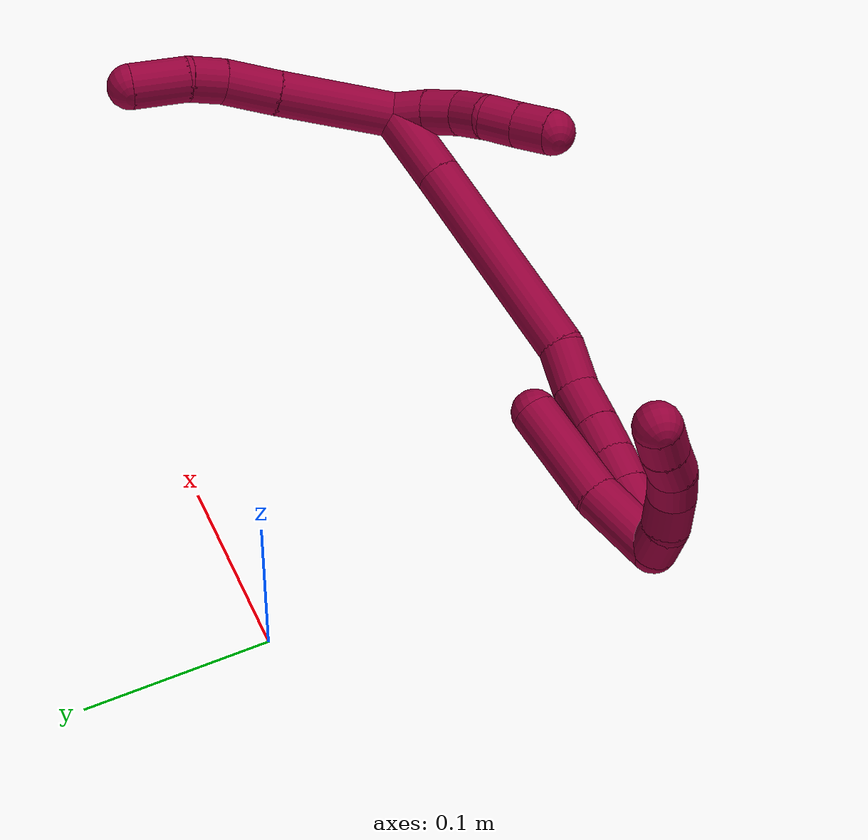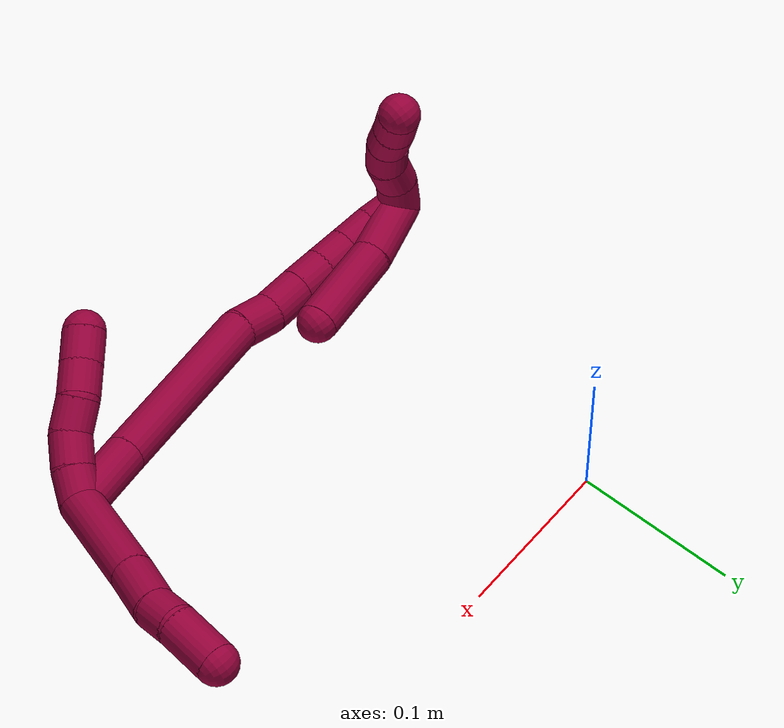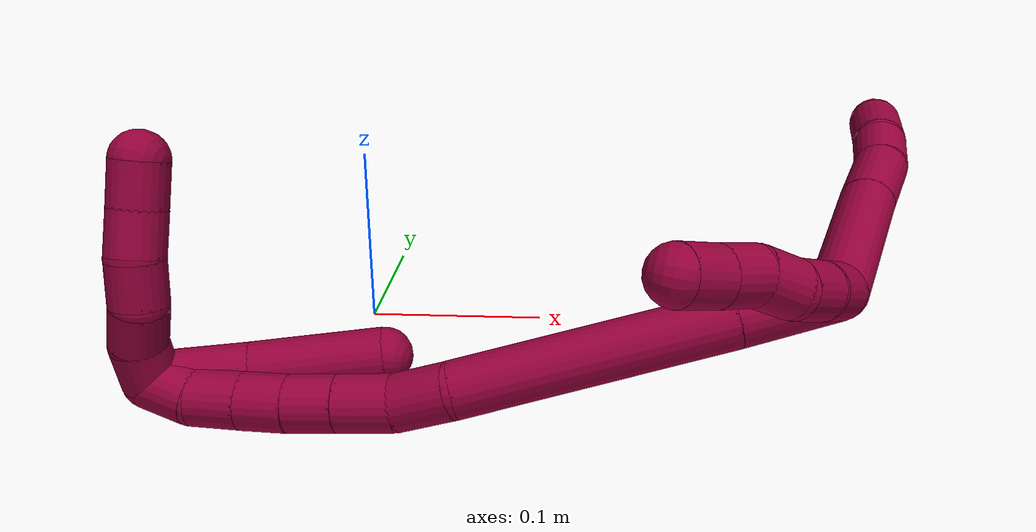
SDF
<sdf version="1.7">
 <world name="default">
  <model name="8">
   <static>0</static>
   <link name="8">
    <collision name="collision-cylinder-e_1_2_8">
     <pose>0.01946 0.02711 0.004685 -1.39967 0.615641 -0.523125</pose>
     <geometry><cylinder><radius>0.0125</radius><length>0.067397</length></cylinder></geometry>
     <surface>
      <friction><ode><mu>1.16</mu><mu2>1.16</mu2><slip1>0</slip1><slip2>0</slip2></ode></friction>
      <contact><ode><kp>1e+06</kp><kd>1</kd><max_vel>0</max_vel><min_depth>0.001</min_depth></ode></contact>
     </surface>
    </collision>
    <visual name="visual-cylinder-e_1_2_8">
     <pose>0.01946 0.02711 0.004685 -1.39967 0.615641 -0.523125</pose>
     <geometry><cylinder><radius>0.0125</radius><length>0.067397</length></cylinder></geometry>
     <material><ambient>0.584314 0 0.227451 1</ambient></material>
    </visual>
    <collision name="collision-cylinder-e_2_8_9">
     <pose>0.04763 0.066555 0.011991 -1.36142 0.604382 -0.494578</pose>
     <geometry><cylinder><radius>0.0125</radius><length>0.030652</length></cylinder></geometry>
     <surface>
      <friction><ode><mu>1.16</mu><mu2>1.16</mu2><slip1>0</slip1><slip2>0</slip2></ode></friction>
      <contact><ode><kp>1e+06</kp><kd>1</kd><max_vel>0</max_vel><min_depth>0.001</min_depth></ode></contact>
     </surface>
    </collision>
    <visual name="visual-cylinder-e_2_8_9">
     <pose>0.04763 0.066555 0.011991 -1.36142 0.604382 -0.494578</pose>
     <geometry><cylinder><radius>0.0125</radius><length>0.030652</length></cylinder></geometry>
     <material><ambient>0.584314 0 0.227451 1</ambient></material>
    </visual>
    <collision name="collision-cylinder-e_3_9_10">
     <pose>0.062149 0.087068 0.014012 -1.64414 0.61649 -0.660217</pose>
     <geometry><cylinder><radius>0.0125</radius><length>0.020099</length></cylinder></geometry>
     <surface>
      <friction><ode><mu>1.16</mu><mu2>1.16</mu2><slip1>0</slip1><slip2>0</slip2></ode></friction>
      <contact><ode><kp>1e+06</kp><kd>1</kd><max_vel>0</max_vel><min_depth>0.001</min_depth></ode></contact>
     </surface>
    </collision>
    <visual name="visual-cylinder-e_3_9_10">
     <pose>0.062149 0.087068 0.014012 -1.64414 0.61649 -0.660217</pose>
     <geometry><cylinder><radius>0.0125</radius><length>0.020099</length></cylinder></geometry>
     <material><ambient>0.584314 0 0.227451 1</ambient></material>
    </visual>
    <collision name="collision-cylinder-e_4_10_6">
     <pose>0.080146 0.10547 0.012651 -1.64499 0.871337 -0.929508</pose>
     <geometry><cylinder><radius>0.0125</radius><length>0.031852</length></cylinder></geometry>
     <surface>
      <friction><ode><mu>1.16</mu><mu2>1.16</mu2><slip1>0</slip1><slip2>0</slip2></ode></friction>
      <contact><ode><kp>1e+06</kp><kd>1</kd><max_vel>0</max_vel><min_depth>0.001</min_depth></ode></contact>
     </surface>
    </collision>
    <visual name="visual-cylinder-e_4_10_6">
     <pose>0.080146 0.10547 0.012651 -1.64499 0.871337 -0.929508</pose>
     <geometry><cylinder><radius>0.0125</radius><length>0.031852</length></cylinder></geometry>
     <material><ambient>0.584314 0 0.227451 1</ambient></material>
    </visual>
    <collision name="collision-cylinder-e_1_2_11">
     <pose>-0.008572 -0.002818 -0.004311 2.56269 -1.02976 -2.17254</pose>
     <geometry><cylinder><radius>0.0125</radius><length>0.02</length></cylinder></geometry>
     <surface>
      <friction><ode><mu>1.16</mu><mu2>1.16</mu2><slip1>0</slip1><slip2>0</slip2></ode></friction>
      <contact><ode><kp>1e+06</kp><kd>1</kd><max_vel>0</max_vel><min_depth>0.001</min_depth></ode></contact>
     </surface>
    </collision>
    <visual name="visual-cylinder-e_1_2_11">
     <pose>-0.008572 -0.002818 -0.004311 2.56269 -1.02976 -2.17254</pose>
     <geometry><cylinder><radius>0.0125</radius><length>0.02</length></cylinder></geometry>
     <material><ambient>0.584314 0 0.227451 1</ambient></material>
    </visual>
    <collision name="collision-cylinder-e_2_11_12">
     <pose>-0.024941 -0.008308 -0.014284 2.70063 -0.89423 -2.26712</pose>
     <geometry><cylinder><radius>0.0125</radius><length>0.02</length></cylinder></geometry>
     <surface>
      <friction><ode><mu>1.16</mu><mu2>1.16</mu2><slip1>0</slip1><slip2>0</slip2></ode></friction>
      <contact><ode><kp>1e+06</kp><kd>1</kd><max_vel>0</max_vel><min_depth>0.001</min_depth></ode></contact>
     </surface>
    </collision>
    <visual name="visual-cylinder-e_2_11_12">
     <pose>-0.024941 -0.008308 -0.014284 2.70063 -0.89423 -2.26712</pose>
     <geometry><cylinder><radius>0.0125</radius><length>0.02</length></cylinder></geometry>
     <material><ambient>0.584314 0 0.227451 1</ambient></material>
    </visual>
    <collision name="collision-cylinder-e_3_12_13">
     <pose>-0.039145 -0.011293 -0.027618 3.10081 -0.695392 -3.02916</pose>
     <geometry><cylinder><radius>0.0125</radius><length>0.02</length></cylinder></geometry>
     <surface>
      <friction><ode><mu>1.16</mu><mu2>1.16</mu2><slip1>0</slip1><slip2>0</slip2></ode></friction>
      <contact><ode><kp>1e+06</kp><kd>1</kd><max_vel>0</max_vel><min_depth>0.001</min_depth></ode></contact>
     </surface>
    </collision>
    <visual name="visual-cylinder-e_3_12_13">
     <pose>-0.039145 -0.011293 -0.027618 3.10081 -0.695392 -3.02916</pose>
     <geometry><cylinder><radius>0.0125</radius><length>0.02</length></cylinder></geometry>
     <material><ambient>0.584314 0 0.227451 1</ambient></material>
    </visual>
    <collision name="collision-cylinder-e_4_13_14">
     <pose>-0.052048 -0.01486 -0.042161 2.69938 -0.707042 -2.04739</pose>
     <geometry><cylinder><radius>0.0125</radius><length>0.02</length></cylinder></geometry>
     <surface>
      <friction><ode><mu>1.16</mu><mu2>1.16</mu2><slip1>0</slip1><slip2>0</slip2></ode></friction>
      <contact><ode><kp>1e+06</kp><kd>1</kd><max_vel>0</max_vel><min_depth>0.001</min_depth></ode></contact>
     </surface>
    </collision>
    <visual name="visual-cylinder-e_4_13_14">
     <pose>-0.052048 -0.01486 -0.042161 2.69938 -0.707042 -2.04739</pose>
     <geometry><cylinder><radius>0.0125</radius><length>0.02</length></cylinder></geometry>
     <material><ambient>0.584314 0 0.227451 1</ambient></material>
    </visual>
    <collision name="collision-cylinder-e_5_14_5">
     <pose>-0.065209 -0.020984 -0.055913 2.74626 -0.729545 -2.17551</pose>
     <geometry><cylinder><radius>0.0125</radius><length>0.02</length></cylinder></geometry>
     <surface>
      <friction><ode><mu>1.16</mu><mu2>1.16</mu2><slip1>0</slip1><slip2>0</slip2></ode></friction>
      <contact><ode><kp>1e+06</kp><kd>1</kd><max_vel>0</max_vel><min_depth>0.001</min_depth></ode></contact>
     </surface>
    </collision>
    <visual name="visual-cylinder-e_5_14_5">
     <pose>-0.065209 -0.020984 -0.055913 2.74626 -0.729545 -2.17551</pose>
     <geometry><cylinder><radius>0.0125</radius><length>0.02</length></cylinder></geometry>
     <material><ambient>0.584314 0 0.227451 1</ambient></material>
    </visual>
    <collision name="collision-cylinder-e_1_2_15">
     <pose>-0.001854 -0.010603 -0.01968 2.64739 -0.082765 -0.325386</pose>
     <geometry><cylinder><radius>0.0125</radius><length>0.044862</length></cylinder></geometry>
     <surface>
      <friction><ode><mu>1.16</mu><mu2>1.16</mu2><slip1>0</slip1><slip2>0</slip2></ode></friction>
      <contact><ode><kp>1e+06</kp><kd>1</kd><max_vel>0</max_vel><min_depth>0.001</min_depth></ode></contact>
     </surface>
    </collision>
    <visual name="visual-cylinder-e_1_2_15">
     <pose>-0.001854 -0.010603 -0.01968 2.64739 -0.082765 -0.325386</pose>
     <geometry><cylinder><radius>0.0125</radius><length>0.044862</length></cylinder></geometry>
     <material><ambient>0.584314 0 0.227451 1</ambient></material>
    </visual>
    <collision name="collision-cylinder-e_2_15_16">
     <pose>-0.008433 -0.048589 -0.092966 2.66934 -0.078326 -0.32286</pose>
     <geometry><cylinder><radius>0.0125</radius><length>0.120762</length></cylinder></geometry>
     <surface>
      <friction><ode><mu>1.16</mu><mu2>1.16</mu2><slip1>0</slip1><slip2>0</slip2></ode></friction>
      <contact><ode><kp>1e+06</kp><kd>1</kd><max_vel>0</max_vel><min_depth>0.001</min_depth></ode></contact>
     </surface>
    </collision>
    <visual name="visual-cylinder-e_2_15_16">
     <pose>-0.008433 -0.048589 -0.092966 2.66934 -0.078326 -0.32286</pose>
     <geometry><cylinder><radius>0.0125</radius><length>0.120762</length></cylinder></geometry>
     <material><ambient>0.584314 0 0.227451 1</ambient></material>
    </visual>
    <collision name="collision-cylinder-e_3_16_17">
     <pose>-0.010852 -0.080784 -0.158076 2.7453 0.182876 0.856802</pose>
     <geometry><cylinder><radius>0.0125</radius><length>0.025361</length></cylinder></geometry>
     <surface>
      <friction><ode><mu>1.16</mu><mu2>1.16</mu2><slip1>0</slip1><slip2>0</slip2></ode></friction>
      <contact><ode><kp>1e+06</kp><kd>1</kd><max_vel>0</max_vel><min_depth>0.001</min_depth></ode></contact>
     </surface>
    </collision>
    <visual name="visual-cylinder-e_3_16_17">
     <pose>-0.010852 -0.080784 -0.158076 2.7453 0.182876 0.856802</pose>
     <geometry><cylinder><radius>0.0125</radius><length>0.025361</length></cylinder></geometry>
     <material><ambient>0.584314 0 0.227451 1</ambient></material>
    </visual>
    <collision name="collision-cylinder-e_4_17_18">
     <pose>-0.008897 -0.088366 -0.181579 2.91487 -0.028502 -0.249071</pose>
     <geometry><cylinder><radius>0.0125</radius><length>0.02464</length></cylinder></geometry>
     <surface>
      <friction><ode><mu>1.16</mu><mu2>1.16</mu2><slip1>0</slip1><slip2>0</slip2></ode></friction>
      <contact><ode><kp>1e+06</kp><kd>1</kd><max_vel>0</max_vel><min_depth>0.001</min_depth></ode></contact>
     </surface>
    </collision>
    <visual name="visual-cylinder-e_4_17_18">
     <pose>-0.008897 -0.088366 -0.181579 2.91487 -0.028502 -0.249071</pose>
     <geometry><cylinder><radius>0.0125</radius><length>0.02464</length></cylinder></geometry>
     <material><ambient>0.584314 0 0.227451 1</ambient></material>
    </visual>
    <collision name="collision-cylinder-e_5_18_19">
     <pose>-0.009323 -0.093435 -0.20388 2.9218 -0.007116 -0.064473</pose>
     <geometry><cylinder><radius>0.0125</radius><length>0.021113</length></cylinder></geometry>
     <surface>
      <friction><ode><mu>1.16</mu><mu2>1.16</mu2><slip1>0</slip1><slip2>0</slip2></ode></friction>
      <contact><ode><kp>1e+06</kp><kd>1</kd><max_vel>0</max_vel><min_depth>0.001</min_depth></ode></contact>
     </surface>
    </collision>
    <visual name="visual-cylinder-e_5_18_19">
     <pose>-0.009323 -0.093435 -0.20388 2.9218 -0.007116 -0.064473</pose>
     <geometry><cylinder><radius>0.0125</radius><length>0.021113</length></cylinder></geometry>
     <material><ambient>0.584314 0 0.227451 1</ambient></material>
    </visual>
    <collision name="collision-cylinder-e_6_19_20">
     <pose>-0.009535 -0.09734 -0.22423 2.98333 -0.013457 -0.1693</pose>
     <geometry><cylinder><radius>0.0125</radius><length>0.020351</length></cylinder></geometry>
     <surface>
      <friction><ode><mu>1.16</mu><mu2>1.16</mu2><slip1>0</slip1><slip2>0</slip2></ode></friction>
      <contact><ode><kp>1e+06</kp><kd>1</kd><max_vel>0</max_vel><min_depth>0.001</min_depth></ode></contact>
     </surface>
    </collision>
    <visual name="visual-cylinder-e_6_19_20">
     <pose>-0.009535 -0.09734 -0.22423 2.98333 -0.013457 -0.1693</pose>
     <geometry><cylinder><radius>0.0125</radius><length>0.020351</length></cylinder></geometry>
     <material><ambient>0.584314 0 0.227451 1</ambient></material>
    </visual>
    <collision name="collision-cylinder-e_7_20_21">
     <pose>-0.009908 -0.100479 -0.244982 2.99916 -0.021819 -0.303528</pose>
     <geometry><cylinder><radius>0.0125</radius><length>0.021635</length></cylinder></geometry>
     <surface>
      <friction><ode><mu>1.16</mu><mu2>1.16</mu2><slip1>0</slip1><slip2>0</slip2></ode></friction>
      <contact><ode><kp>1e+06</kp><kd>1</kd><max_vel>0</max_vel><min_depth>0.001</min_depth></ode></contact>
     </surface>
    </collision>
    <visual name="visual-cylinder-e_7_20_21">
     <pose>-0.009908 -0.100479 -0.244982 2.99916 -0.021819 -0.303528</pose>
     <geometry><cylinder><radius>0.0125</radius><length>0.021635</length></cylinder></geometry>
     <material><ambient>0.584314 0 0.227451 1</ambient></material>
    </visual>
    <collision name="collision-cylinder-e_8_21_1">
     <pose>-0.010034 -0.100572 -0.266228 -3.00562 0.010374 -0.152069</pose>
     <geometry><cylinder><radius>0.0125</radius><length>0.021277</length></cylinder></geometry>
     <surface>
      <friction><ode><mu>1.16</mu><mu2>1.16</mu2><slip1>0</slip1><slip2>0</slip2></ode></friction>
      <contact><ode><kp>1e+06</kp><kd>1</kd><max_vel>0</max_vel><min_depth>0.001</min_depth></ode></contact>
     </surface>
    </collision>
    <visual name="visual-cylinder-e_8_21_1">
     <pose>-0.010034 -0.100572 -0.266228 -3.00562 0.010374 -0.152069</pose>
     <geometry><cylinder><radius>0.0125</radius><length>0.021277</length></cylinder></geometry>
     <material><ambient>0.584314 0 0.227451 1</ambient></material>
    </visual>
    <collision name="collision-cylinder-e_1_1_22">
     <pose>-0.003873 -0.091992 -0.258255 -0.368021 0.296003 -0.055482</pose>
     <geometry><cylinder><radius>0.0125</radius><length>0.041486</length></cylinder></geometry>
     <surface>
      <friction><ode><mu>1.16</mu><mu2>1.16</mu2><slip1>0</slip1><slip2>0</slip2></ode></friction>
      <contact><ode><kp>1e+06</kp><kd>1</kd><max_vel>0</max_vel><min_depth>0.001</min_depth></ode></contact>
     </surface>
    </collision>
    <visual name="visual-cylinder-e_1_1_22">
     <pose>-0.003873 -0.091992 -0.258255 -0.368021 0.296003 -0.055482</pose>
     <geometry><cylinder><radius>0.0125</radius><length>0.041486</length></cylinder></geometry>
     <material><ambient>0.584314 0 0.227451 1</ambient></material>
    </visual>
    <collision name="collision-cylinder-e_2_22_4">
     <pose>0.00622 -0.074928 -0.212519 -0.349616 0.138595 -0.024515</pose>
     <geometry><cylinder><radius>0.0125</radius><length>0.058514</length></cylinder></geometry>
     <surface>
      <friction><ode><mu>1.16</mu><mu2>1.16</mu2><slip1>0</slip1><slip2>0</slip2></ode></friction>
      <contact><ode><kp>1e+06</kp><kd>1</kd><max_vel>0</max_vel><min_depth>0.001</min_depth></ode></contact>
     </surface>
    </collision>
    <visual name="visual-cylinder-e_2_22_4">
     <pose>0.00622 -0.074928 -0.212519 -0.349616 0.138595 -0.024515</pose>
     <geometry><cylinder><radius>0.0125</radius><length>0.058514</length></cylinder></geometry>
     <material><ambient>0.584314 0 0.227451 1</ambient></material>
    </visual>
    <collision name="collision-cylinder-e_1_1_23">
     <pose>-0.017291 -0.09256 -0.278367 -1.80963 -0.828277 1.0201</pose>
     <geometry><cylinder><radius>0.0125</radius><length>0.02</length></cylinder></geometry>
     <surface>
      <friction><ode><mu>1.16</mu><mu2>1.16</mu2><slip1>0</slip1><slip2>0</slip2></ode></friction>
      <contact><ode><kp>1e+06</kp><kd>1</kd><max_vel>0</max_vel><min_depth>0.001</min_depth></ode></contact>
     </surface>
    </collision>
    <visual name="visual-cylinder-e_1_1_23">
     <pose>-0.017291 -0.09256 -0.278367 -1.80963 -0.828277 1.0201</pose>
     <geometry><cylinder><radius>0.0125</radius><length>0.02</length></cylinder></geometry>
     <material><ambient>0.584314 0 0.227451 1</ambient></material>
    </visual>
    <collision name="collision-cylinder-e_2_23_24">
     <pose>-0.031533 -0.078862 -0.27858 -1.37864 -0.757927 0.634254</pose>
     <geometry><cylinder><radius>0.0125</radius><length>0.02</length></cylinder></geometry>
     <surface>
      <friction><ode><mu>1.16</mu><mu2>1.16</mu2><slip1>0</slip1><slip2>0</slip2></ode></friction>
      <contact><ode><kp>1e+06</kp><kd>1</kd><max_vel>0</max_vel><min_depth>0.001</min_depth></ode></contact>
     </surface>
    </collision>
    <visual name="visual-cylinder-e_2_23_24">
     <pose>-0.031533 -0.078862 -0.27858 -1.37864 -0.757927 0.634254</pose>
     <geometry><cylinder><radius>0.0125</radius><length>0.02</length></cylinder></geometry>
     <material><ambient>0.584314 0 0.227451 1</ambient></material>
    </visual>
    <collision name="collision-cylinder-e_3_24_25">
     <pose>-0.04358 -0.063245 -0.278287 -1.69904 -0.543717 0.613986</pose>
     <geometry><cylinder><radius>0.0125</radius><length>0.02</length></cylinder></geometry>
     <surface>
      <friction><ode><mu>1.16</mu><mu2>1.16</mu2><slip1>0</slip1><slip2>0</slip2></ode></friction>
      <contact><ode><kp>1e+06</kp><kd>1</kd><max_vel>0</max_vel><min_depth>0.001</min_depth></ode></contact>
     </surface>
    </collision>
    <visual name="visual-cylinder-e_3_24_25">
     <pose>-0.04358 -0.063245 -0.278287 -1.69904 -0.543717 0.613986</pose>
     <geometry><cylinder><radius>0.0125</radius><length>0.02</length></cylinder></geometry>
     <material><ambient>0.584314 0 0.227451 1</ambient></material>
    </visual>
    <collision name="collision-cylinder-e_4_25_26">
     <pose>-0.051818 -0.045301 -0.280469 -1.68532 -0.311486 0.348647</pose>
     <geometry><cylinder><radius>0.0125</radius><length>0.02</length></cylinder></geometry>
     <surface>
      <friction><ode><mu>1.16</mu><mu2>1.16</mu2><slip1>0</slip1><slip2>0</slip2></ode></friction>
      <contact><ode><kp>1e+06</kp><kd>1</kd><max_vel>0</max_vel><min_depth>0.001</min_depth></ode></contact>
     </surface>
    </collision>
    <visual name="visual-cylinder-e_4_25_26">
     <pose>-0.051818 -0.045301 -0.280469 -1.68532 -0.311486 0.348647</pose>
     <geometry><cylinder><radius>0.0125</radius><length>0.02</length></cylinder></geometry>
     <material><ambient>0.584314 0 0.227451 1</ambient></material>
    </visual>
    <collision name="collision-cylinder-e_5_26_3">
     <pose>-0.058475 -0.026551 -0.282409 -1.66217 -0.36739 0.401694</pose>
     <geometry><cylinder><radius>0.0125</radius><length>0.02</length></cylinder></geometry>
     <surface>
      <friction><ode><mu>1.16</mu><mu2>1.16</mu2><slip1>0</slip1><slip2>0</slip2></ode></friction>
      <contact><ode><kp>1e+06</kp><kd>1</kd><max_vel>0</max_vel><min_depth>0.001</min_depth></ode></contact>
     </surface>
    </collision>
    <visual name="visual-cylinder-e_5_26_3">
     <pose>-0.058475 -0.026551 -0.282409 -1.66217 -0.36739 0.401694</pose>
     <geometry><cylinder><radius>0.0125</radius><length>0.02</length></cylinder></geometry>
     <material><ambient>0.584314 0 0.227451 1</ambient></material>
    </visual>
    <collision name="collision-sphere-3">
     <pose>-0.062067 -0.017257 -0.28326 0 -0 0</pose>
     <geometry><sphere><radius>0.0125</radius></sphere></geometry>
     <surface>
      <friction><ode><mu>1.16</mu><mu2>1.16</mu2><slip1>0</slip1><slip2>0</slip2></ode></friction>
      <contact><ode><kp>1e+06</kp><kd>1</kd><max_vel>0</max_vel><min_depth>0.001</min_depth></ode></contact>
     </surface>
    </collision>
    <visual name="visual-sphere-3">
     <pose>-0.062067 -0.017257 -0.28326 0 -0 0</pose>
     <geometry><sphere><radius>0.0125</radius></sphere></geometry>
     <material><ambient>0.584314 0 0.227451 1</ambient></material>
    </visual>
    <collision name="collision-sphere-26">
     <pose>-0.054883 -0.035845 -0.281557 0 -0 0</pose>
     <geometry><sphere><radius>0.0125</radius></sphere></geometry>
     <surface>
      <friction><ode><mu>1.16</mu><mu2>1.16</mu2><slip1>0</slip1><slip2>0</slip2></ode></friction>
      <contact><ode><kp>1e+06</kp><kd>1</kd><max_vel>0</max_vel><min_depth>0.001</min_depth></ode></contact>
     </surface>
    </collision>
    <visual name="visual-sphere-26">
     <pose>-0.054883 -0.035845 -0.281557 0 -0 0</pose>
     <geometry><sphere><radius>0.0125</radius></sphere></geometry>
     <material><ambient>0.584314 0 0.227451 1</ambient></material>
    </visual>
    <collision name="collision-sphere-25">
     <pose>-0.048754 -0.054758 -0.279382 0 -0 0</pose>
     <geometry><sphere><radius>0.0125</radius></sphere></geometry>
     <surface>
      <friction><ode><mu>1.16</mu><mu2>1.16</mu2><slip1>0</slip1><slip2>0</slip2></ode></friction>
      <contact><ode><kp>1e+06</kp><kd>1</kd><max_vel>0</max_vel><min_depth>0.001</min_depth></ode></contact>
     </surface>
    </collision>
    <visual name="visual-sphere-25">
     <pose>-0.048754 -0.054758 -0.279382 0 -0 0</pose>
     <geometry><sphere><radius>0.0125</radius></sphere></geometry>
     <material><ambient>0.584314 0 0.227451 1</ambient></material>
    </visual>
    <collision name="collision-sphere-24">
     <pose>-0.038407 -0.071733 -0.277193 0 -0 0</pose>
     <geometry><sphere><radius>0.0125</radius></sphere></geometry>
     <surface>
      <friction><ode><mu>1.16</mu><mu2>1.16</mu2><slip1>0</slip1><slip2>0</slip2></ode></friction>
      <contact><ode><kp>1e+06</kp><kd>1</kd><max_vel>0</max_vel><min_depth>0.001</min_depth></ode></contact>
     </surface>
    </collision>
    <visual name="visual-sphere-24">
     <pose>-0.038407 -0.071733 -0.277193 0 -0 0</pose>
     <geometry><sphere><radius>0.0125</radius></sphere></geometry>
     <material><ambient>0.584314 0 0.227451 1</ambient></material>
    </visual>
    <collision name="collision-sphere-23">
     <pose>-0.024659 -0.085991 -0.279967 0 -0 0</pose>
     <geometry><sphere><radius>0.0125</radius></sphere></geometry>
     <surface>
      <friction><ode><mu>1.16</mu><mu2>1.16</mu2><slip1>0</slip1><slip2>0</slip2></ode></friction>
      <contact><ode><kp>1e+06</kp><kd>1</kd><max_vel>0</max_vel><min_depth>0.001</min_depth></ode></contact>
     </surface>
    </collision>
    <visual name="visual-sphere-23">
     <pose>-0.024659 -0.085991 -0.279967 0 -0 0</pose>
     <geometry><sphere><radius>0.0125</radius></sphere></geometry>
     <material><ambient>0.584314 0 0.227451 1</ambient></material>
    </visual>
    <collision name="collision-sphere-4">
     <pose>0.010262 -0.065003 -0.185296 0 -0 0</pose>
     <geometry><sphere><radius>0.0125</radius></sphere></geometry>
     <surface>
      <friction><ode><mu>1.16</mu><mu2>1.16</mu2><slip1>0</slip1><slip2>0</slip2></ode></friction>
      <contact><ode><kp>1e+06</kp><kd>1</kd><max_vel>0</max_vel><min_depth>0.001</min_depth></ode></contact>
     </surface>
    </collision>
    <visual name="visual-sphere-4">
     <pose>0.010262 -0.065003 -0.185296 0 -0 0</pose>
     <geometry><sphere><radius>0.0125</radius></sphere></geometry>
     <material><ambient>0.584314 0 0.227451 1</ambient></material>
    </visual>
    <collision name="collision-sphere-22">
     <pose>0.002178 -0.084854 -0.239743 0 -0 0</pose>
     <geometry><sphere><radius>0.0125</radius></sphere></geometry>
     <surface>
      <friction><ode><mu>1.16</mu><mu2>1.16</mu2><slip1>0</slip1><slip2>0</slip2></ode></friction>
      <contact><ode><kp>1e+06</kp><kd>1</kd><max_vel>0</max_vel><min_depth>0.001</min_depth></ode></contact>
     </surface>
    </collision>
    <visual name="visual-sphere-22">
     <pose>0.002178 -0.084854 -0.239743 0 -0 0</pose>
     <geometry><sphere><radius>0.0125</radius></sphere></geometry>
     <material><ambient>0.584314 0 0.227451 1</ambient></material>
    </visual>
    <collision name="collision-sphere-1">
     <pose>-0.009923 -0.09913 -0.276767 0 -0 0</pose>
     <geometry><sphere><radius>0.0125</radius></sphere></geometry>
     <surface>
      <friction><ode><mu>1.16</mu><mu2>1.16</mu2><slip1>0</slip1><slip2>0</slip2></ode></friction>
      <contact><ode><kp>1e+06</kp><kd>1</kd><max_vel>0</max_vel><min_depth>0.001</min_depth></ode></contact>
     </surface>
    </collision>
    <visual name="visual-sphere-1">
     <pose>-0.009923 -0.09913 -0.276767 0 -0 0</pose>
     <geometry><sphere><radius>0.0125</radius></sphere></geometry>
     <material><ambient>0.584314 0 0.227451 1</ambient></material>
    </visual>
    <collision name="collision-sphere-21">
     <pose>-0.010144 -0.102014 -0.255688 0 -0 0</pose>
     <geometry><sphere><radius>0.0125</radius></sphere></geometry>
     <surface>
      <friction><ode><mu>1.16</mu><mu2>1.16</mu2><slip1>0</slip1><slip2>0</slip2></ode></friction>
      <contact><ode><kp>1e+06</kp><kd>1</kd><max_vel>0</max_vel><min_depth>0.001</min_depth></ode></contact>
     </surface>
    </collision>
    <visual name="visual-sphere-21">
     <pose>-0.010144 -0.102014 -0.255688 0 -0 0</pose>
     <geometry><sphere><radius>0.0125</radius></sphere></geometry>
     <material><ambient>0.584314 0 0.227451 1</ambient></material>
    </visual>
    <collision name="collision-sphere-11">
     <pose>-0.017144 -0.005635 -0.008622 0 -0 0</pose>
     <geometry><sphere><radius>0.0125</radius></sphere></geometry>
     <surface>
      <friction><ode><mu>1.16</mu><mu2>1.16</mu2><slip1>0</slip1><slip2>0</slip2></ode></friction>
      <contact><ode><kp>1e+06</kp><kd>1</kd><max_vel>0</max_vel><min_depth>0.001</min_depth></ode></contact>
     </surface>
    </collision>
    <visual name="visual-sphere-11">
     <pose>-0.017144 -0.005635 -0.008622 0 -0 0</pose>
     <geometry><sphere><radius>0.0125</radius></sphere></geometry>
     <material><ambient>0.584314 0 0.227451 1</ambient></material>
    </visual>
    <collision name="collision-sphere-6">
     <pose>0.092332 0.115696 0.011891 0 -0 0</pose>
     <geometry><sphere><radius>0.0125</radius></sphere></geometry>
     <surface>
      <friction><ode><mu>1.16</mu><mu2>1.16</mu2><slip1>0</slip1><slip2>0</slip2></ode></friction>
      <contact><ode><kp>1e+06</kp><kd>1</kd><max_vel>0</max_vel><min_depth>0.001</min_depth></ode></contact>
     </surface>
    </collision>
    <visual name="visual-sphere-6">
     <pose>0.092332 0.115696 0.011891 0 -0 0</pose>
     <geometry><sphere><radius>0.0125</radius></sphere></geometry>
     <material><ambient>0.584314 0 0.227451 1</ambient></material>
    </visual>
    <collision name="collision-sphere-10">
     <pose>0.067959 0.095245 0.013411 0 -0 0</pose>
     <geometry><sphere><radius>0.0125</radius></sphere></geometry>
     <surface>
      <friction><ode><mu>1.16</mu><mu2>1.16</mu2><slip1>0</slip1><slip2>0</slip2></ode></friction>
      <contact><ode><kp>1e+06</kp><kd>1</kd><max_vel>0</max_vel><min_depth>0.001</min_depth></ode></contact>
     </surface>
    </collision>
    <visual name="visual-sphere-10">
     <pose>0.067959 0.095245 0.013411 0 -0 0</pose>
     <geometry><sphere><radius>0.0125</radius></sphere></geometry>
     <material><ambient>0.584314 0 0.227451 1</ambient></material>
    </visual>
    <collision name="collision-sphere-9">
     <pose>0.056339 0.07889 0.014613 0 -0 0</pose>
     <geometry><sphere><radius>0.0125</radius></sphere></geometry>
     <surface>
      <friction><ode><mu>1.16</mu><mu2>1.16</mu2><slip1>0</slip1><slip2>0</slip2></ode></friction>
      <contact><ode><kp>1e+06</kp><kd>1</kd><max_vel>0</max_vel><min_depth>0.001</min_depth></ode></contact>
     </surface>
    </collision>
    <visual name="visual-sphere-9">
     <pose>0.056339 0.07889 0.014613 0 -0 0</pose>
     <geometry><sphere><radius>0.0125</radius></sphere></geometry>
     <material><ambient>0.584314 0 0.227451 1</ambient></material>
    </visual>
    <collision name="collision-sphere-2">
     <geometry><sphere><radius>0.0125</radius></sphere></geometry>
     <surface>
      <friction><ode><mu>1.16</mu><mu2>1.16</mu2><slip1>0</slip1><slip2>0</slip2></ode></friction>
      <contact><ode><kp>1e+06</kp><kd>1</kd><max_vel>0</max_vel><min_depth>0.001</min_depth></ode></contact>
     </surface>
    </collision>
    <visual name="visual-sphere-2">
     <geometry><sphere><radius>0.0125</radius></sphere></geometry>
     <material><ambient>0.584314 0 0.227451 1</ambient></material>
    </visual>
    <collision name="collision-sphere-19">
     <pose>-0.009398 -0.095737 -0.214183 0 -0 0</pose>
     <geometry><sphere><radius>0.0125</radius></sphere></geometry>
     <surface>
      <friction><ode><mu>1.16</mu><mu2>1.16</mu2><slip1>0</slip1><slip2>0</slip2></ode></friction>
      <contact><ode><kp>1e+06</kp><kd>1</kd><max_vel>0</max_vel><min_depth>0.001</min_depth></ode></contact>
     </surface>
    </collision>
    <visual name="visual-sphere-19">
     <pose>-0.009398 -0.095737 -0.214183 0 -0 0</pose>
     <geometry><sphere><radius>0.0125</radius></sphere></geometry>
     <material><ambient>0.584314 0 0.227451 1</ambient></material>
    </visual>
    <collision name="collision-sphere-8">
     <pose>0.03892 0.054219 0.00937 0 -0 0</pose>
     <geometry><sphere><radius>0.0125</radius></sphere></geometry>
     <surface>
      <friction><ode><mu>1.16</mu><mu2>1.16</mu2><slip1>0</slip1><slip2>0</slip2></ode></friction>
      <contact><ode><kp>1e+06</kp><kd>1</kd><max_vel>0</max_vel><min_depth>0.001</min_depth></ode></contact>
     </surface>
    </collision>
    <visual name="visual-sphere-8">
     <pose>0.03892 0.054219 0.00937 0 -0 0</pose>
     <geometry><sphere><radius>0.0125</radius></sphere></geometry>
     <material><ambient>0.584314 0 0.227451 1</ambient></material>
    </visual>
    <collision name="collision-sphere-12">
     <pose>-0.032738 -0.01098 -0.019947 0 -0 0</pose>
     <geometry><sphere><radius>0.0125</radius></sphere></geometry>
     <surface>
      <friction><ode><mu>1.16</mu><mu2>1.16</mu2><slip1>0</slip1><slip2>0</slip2></ode></friction>
      <contact><ode><kp>1e+06</kp><kd>1</kd><max_vel>0</max_vel><min_depth>0.001</min_depth></ode></contact>
     </surface>
    </collision>
    <visual name="visual-sphere-12">
     <pose>-0.032738 -0.01098 -0.019947 0 -0 0</pose>
     <geometry><sphere><radius>0.0125</radius></sphere></geometry>
     <material><ambient>0.584314 0 0.227451 1</ambient></material>
    </visual>
    <collision name="collision-sphere-13">
     <pose>-0.045552 -0.011606 -0.03529 0 -0 0</pose>
     <geometry><sphere><radius>0.0125</radius></sphere></geometry>
     <surface>
      <friction><ode><mu>1.16</mu><mu2>1.16</mu2><slip1>0</slip1><slip2>0</slip2></ode></friction>
      <contact><ode><kp>1e+06</kp><kd>1</kd><max_vel>0</max_vel><min_depth>0.001</min_depth></ode></contact>
     </surface>
    </collision>
    <visual name="visual-sphere-13">
     <pose>-0.045552 -0.011606 -0.03529 0 -0 0</pose>
     <geometry><sphere><radius>0.0125</radius></sphere></geometry>
     <material><ambient>0.584314 0 0.227451 1</ambient></material>
    </visual>
    <collision name="collision-sphere-14">
     <pose>-0.058544 -0.018113 -0.049033 0 -0 0</pose>
     <geometry><sphere><radius>0.0125</radius></sphere></geometry>
     <surface>
      <friction><ode><mu>1.16</mu><mu2>1.16</mu2><slip1>0</slip1><slip2>0</slip2></ode></friction>
      <contact><ode><kp>1e+06</kp><kd>1</kd><max_vel>0</max_vel><min_depth>0.001</min_depth></ode></contact>
     </surface>
    </collision>
    <visual name="visual-sphere-14">
     <pose>-0.058544 -0.018113 -0.049033 0 -0 0</pose>
     <geometry><sphere><radius>0.0125</radius></sphere></geometry>
     <material><ambient>0.584314 0 0.227451 1</ambient></material>
    </visual>
    <collision name="collision-sphere-5">
     <pose>-0.071874 -0.023855 -0.062793 0 -0 0</pose>
     <geometry><sphere><radius>0.0125</radius></sphere></geometry>
     <surface>
      <friction><ode><mu>1.16</mu><mu2>1.16</mu2><slip1>0</slip1><slip2>0</slip2></ode></friction>
      <contact><ode><kp>1e+06</kp><kd>1</kd><max_vel>0</max_vel><min_depth>0.001</min_depth></ode></contact>
     </surface>
    </collision>
    <visual name="visual-sphere-5">
     <pose>-0.071874 -0.023855 -0.062793 0 -0 0</pose>
     <geometry><sphere><radius>0.0125</radius></sphere></geometry>
     <material><ambient>0.584314 0 0.227451 1</ambient></material>
    </visual>
    <collision name="collision-sphere-15">
     <pose>-0.003709 -0.021206 -0.039359 0 -0 0</pose>
     <geometry><sphere><radius>0.0125</radius></sphere></geometry>
     <surface>
      <friction><ode><mu>1.16</mu><mu2>1.16</mu2><slip1>0</slip1><slip2>0</slip2></ode></friction>
      <contact><ode><kp>1e+06</kp><kd>1</kd><max_vel>0</max_vel><min_depth>0.001</min_depth></ode></contact>
     </surface>
    </collision>
    <visual name="visual-sphere-15">
     <pose>-0.003709 -0.021206 -0.039359 0 -0 0</pose>
     <geometry><sphere><radius>0.0125</radius></sphere></geometry>
     <material><ambient>0.584314 0 0.227451 1</ambient></material>
    </visual>
    <collision name="collision-sphere-16">
     <pose>-0.013158 -0.075971 -0.146574 0 -0 0</pose>
     <geometry><sphere><radius>0.0125</radius></sphere></geometry>
     <surface>
      <friction><ode><mu>1.16</mu><mu2>1.16</mu2><slip1>0</slip1><slip2>0</slip2></ode></friction>
      <contact><ode><kp>1e+06</kp><kd>1</kd><max_vel>0</max_vel><min_depth>0.001</min_depth></ode></contact>
     </surface>
    </collision>
    <visual name="visual-sphere-16">
     <pose>-0.013158 -0.075971 -0.146574 0 -0 0</pose>
     <geometry><sphere><radius>0.0125</radius></sphere></geometry>
     <material><ambient>0.584314 0 0.227451 1</ambient></material>
    </visual>
    <collision name="collision-sphere-17">
     <pose>-0.008546 -0.085597 -0.169579 0 -0 0</pose>
     <geometry><sphere><radius>0.0125</radius></sphere></geometry>
     <surface>
      <friction><ode><mu>1.16</mu><mu2>1.16</mu2><slip1>0</slip1><slip2>0</slip2></ode></friction>
      <contact><ode><kp>1e+06</kp><kd>1</kd><max_vel>0</max_vel><min_depth>0.001</min_depth></ode></contact>
     </surface>
    </collision>
    <visual name="visual-sphere-17">
     <pose>-0.008546 -0.085597 -0.169579 0 -0 0</pose>
     <geometry><sphere><radius>0.0125</radius></sphere></geometry>
     <material><ambient>0.584314 0 0.227451 1</ambient></material>
    </visual>
    <collision name="collision-sphere-18">
     <pose>-0.009248 -0.091134 -0.193578 0 -0 0</pose>
     <geometry><sphere><radius>0.0125</radius></sphere></geometry>
     <surface>
      <friction><ode><mu>1.16</mu><mu2>1.16</mu2><slip1>0</slip1><slip2>0</slip2></ode></friction>
      <contact><ode><kp>1e+06</kp><kd>1</kd><max_vel>0</max_vel><min_depth>0.001</min_depth></ode></contact>
     </surface>
    </collision>
    <visual name="visual-sphere-18">
     <pose>-0.009248 -0.091134 -0.193578 0 -0 0</pose>
     <geometry><sphere><radius>0.0125</radius></sphere></geometry>
     <material><ambient>0.584314 0 0.227451 1</ambient></material>
    </visual>
    <collision name="collision-sphere-20">
     <pose>-0.009672 -0.098944 -0.234277 0 -0 0</pose>
     <geometry><sphere><radius>0.0125</radius></sphere></geometry>
     <surface>
      <friction><ode><mu>1.16</mu><mu2>1.16</mu2><slip1>0</slip1><slip2>0</slip2></ode></friction>
      <contact><ode><kp>1e+06</kp><kd>1</kd><max_vel>0</max_vel><min_depth>0.001</min_depth></ode></contact>
     </surface>
    </collision>
    <visual name="visual-sphere-20">
     <pose>-0.009672 -0.098944 -0.234277 0 -0 0</pose>
     <geometry><sphere><radius>0.0125</radius></sphere></geometry>
     <material><ambient>0.584314 0 0.227451 1</ambient></material>
    </visual>
    <inertial>
     <pose>-0.004654 -0.033809 -0.124073 0 -0 0</pose>
     <mass>0.75</mass>
     <inertia><ixx>0.000146</ixx><ixy>0</ixy><ixz>0</ixz><iyy>-0.000153</iyy><iyz>0</iyz><izz>8e-06</izz></inertia>
    </inertial>
   </link>
   <pose>0.234527 -0.173615 0.092269 1.71324 0.617191 1.4706</pose>
  </model>
 </world>
</sdf>
